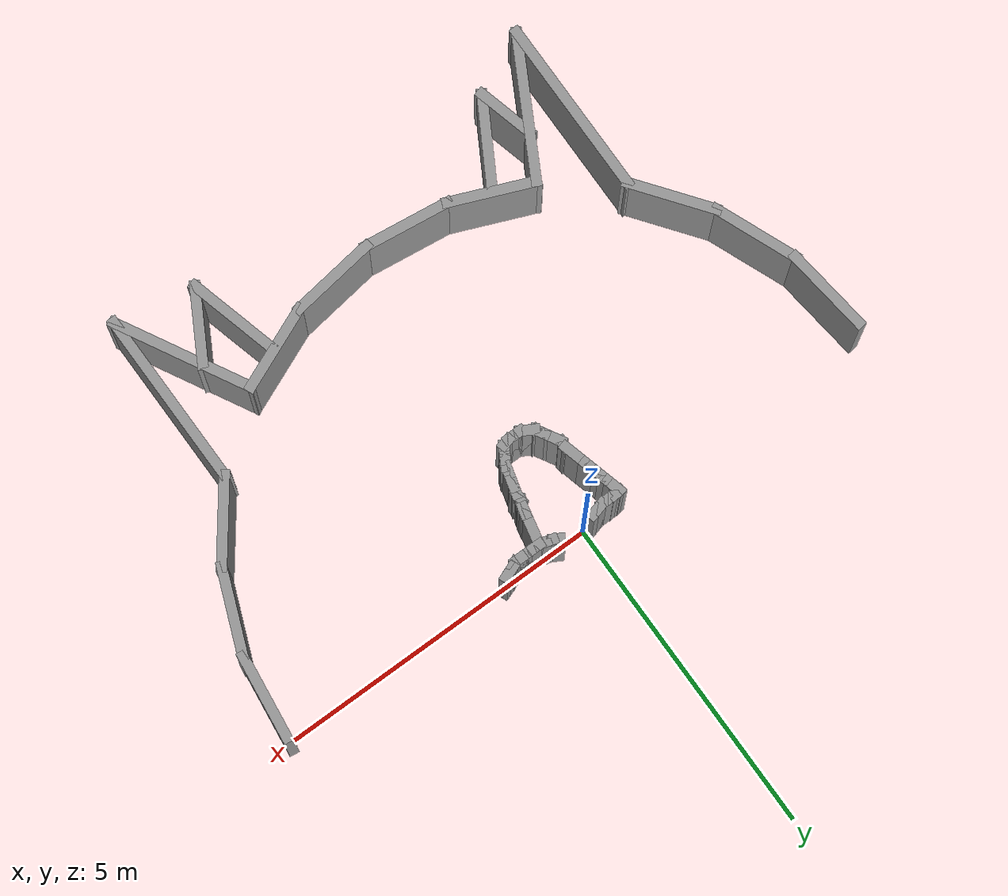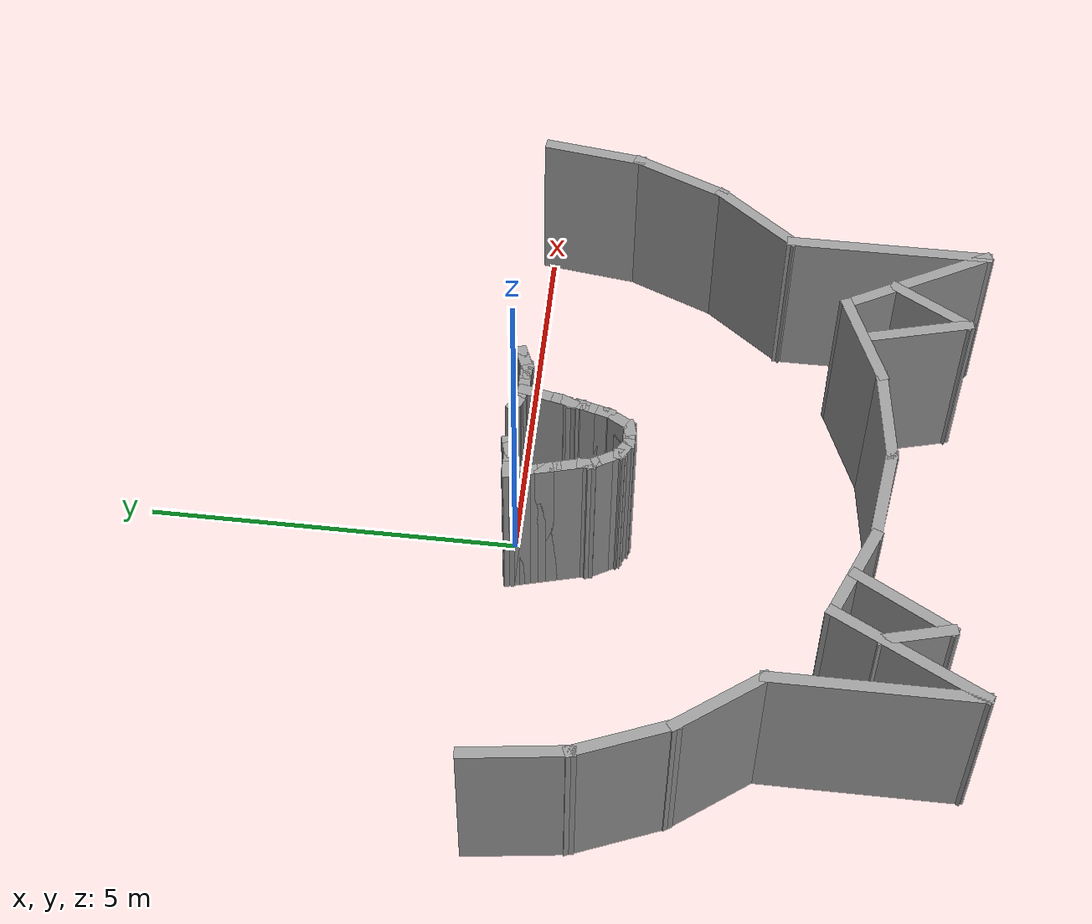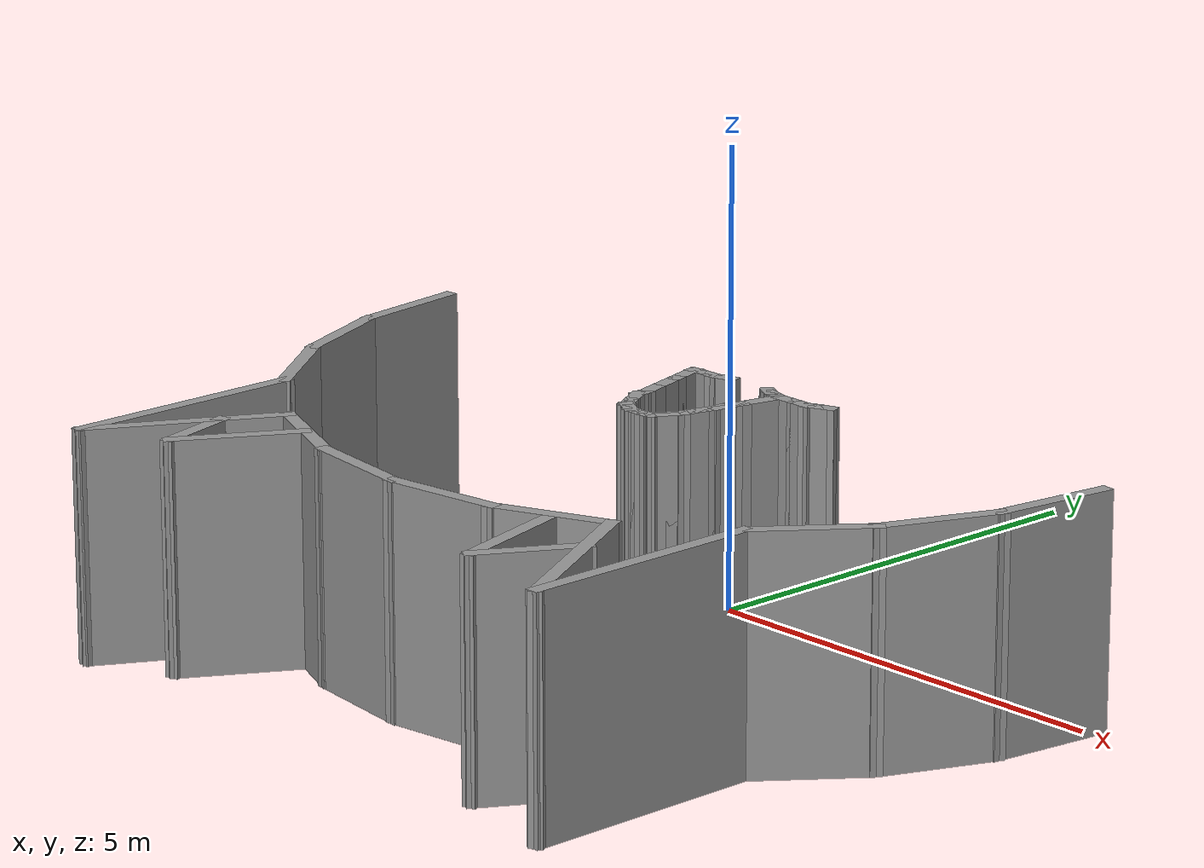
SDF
<sdf version="1.6">
 <model name="cat">
  <pose>0.253474 0.457983 0 0 -0 0</pose>
  <link name="Wall_107">
   <collision name="Wall_107_Collision">
    <geometry><box><size>2.75 0.15 2.5</size></box></geometry>
    <pose>0 0 1.25 0 -0 0</pose>
   </collision>
   <visual name="Wall_107_Visual">
    <pose>0 0 1.25 0 -0 0</pose>
    <geometry><box><size>2.75 0.15 2.5</size></box></geometry>
    <material>
     <script><uri>file://media/materials/scripts/gazebo.material</uri><name>Gazebo/Grey</name></script>
     <ambient>1 1 1 1</ambient>
    </material>
    <meta><layer>0</layer></meta>
   </visual>
   <pose>3.42947 -5.10717 0 0 -0 -1.5708</pose>
  </link>
  <link name="Wall_108">
   <collision name="Wall_108_Collision">
    <geometry><box><size>2.23689 0.15 2.5</size></box></geometry>
    <pose>0 0 1.25 0 -0 0</pose>
   </collision>
   <visual name="Wall_108_Visual">
    <pose>0 0 1.25 0 -0 0</pose>
    <geometry><box><size>2.23689 0.15 2.5</size></box></geometry>
    <material>
     <script><uri>file://media/materials/scripts/gazebo.material</uri><name>Gazebo/Grey</name></script>
     <ambient>1 1 1 1</ambient>
    </material>
    <meta><layer>0</layer></meta>
   </visual>
   <pose>2.92723 -5.49255 0 0 -0 2.07296</pose>
  </link>
  <link name="Wall_110">
   <collision name="Wall_110_Collision">
    <geometry><box><size>2.75 0.15 2.5</size></box></geometry>
    <pose>0 0 1.25 0 -0 0</pose>
   </collision>
   <visual name="Wall_110_Visual">
    <pose>0 0 1.25 0 -0 0</pose>
    <geometry><box><size>2.75 0.15 2.5</size></box></geometry>
    <material>
     <script><uri>file://media/materials/scripts/gazebo.material</uri><name>Gazebo/Grey</name></script>
     <ambient>1 1 1 1</ambient>
    </material>
    <meta><layer>0</layer></meta>
   </visual>
   <pose>-3.42947 -5.12272 0 0 -0 -1.5708</pose>
  </link>
  <link name="Wall_111">
   <collision name="Wall_111_Collision">
    <geometry><box><size>2.25053 0.15 2.5</size></box></geometry>
    <pose>0 0 1.25 0 -0 0</pose>
   </collision>
   <visual name="Wall_111_Visual">
    <pose>0 0 1.25 0 -0 0</pose>
    <geometry><box><size>2.25053 0.15 2.5</size></box></geometry>
    <material>
     <script><uri>file://media/materials/scripts/gazebo.material</uri><name>Gazebo/Grey</name></script>
     <ambient>1 1 1 1</ambient>
    </material>
    <meta><layer>0</layer></meta>
   </visual>
   <pose>-2.92723 -5.50032 0 0 -0 1.07219</pose>
  </link>
  <link name="Wall_113">
   <collision name="Wall_113_Collision">
    <geometry><box><size>1 0.15 2.5</size></box></geometry>
    <pose>0 0 1.25 0 -0 0</pose>
   </collision>
   <visual name="Wall_113_Visual">
    <pose>0 0 1.25 0 -0 0</pose>
    <geometry><box><size>1 0.15 2.5</size></box></geometry>
    <material>
     <script><uri>file://media/materials/scripts/gazebo.material</uri><name>Gazebo/Grey</name></script>
     <ambient>1 1 1 1</ambient>
    </material>
    <meta><layer>0</layer></meta>
   </visual>
   <pose>-2.64432 -5.59243 0 0 -0 -1.309</pose>
  </link>
  <link name="Wall_114">
   <collision name="Wall_114_Collision">
    <geometry><box><size>1.5 0.15 2.5</size></box></geometry>
    <pose>0 0 1.25 0 -0 0</pose>
   </collision>
   <visual name="Wall_114_Visual">
    <pose>0 0 1.25 0 -0 0</pose>
    <geometry><box><size>1.5 0.15 2.5</size></box></geometry>
    <material>
     <script><uri>file://media/materials/scripts/gazebo.material</uri><name>Gazebo/Grey</name></script>
     <ambient>1 1 1 1</ambient>
    </material>
    <meta><layer>0</layer></meta>
   </visual>
   <pose>-2.19682 -5.41839 0 0 -0 1.0472</pose>
  </link>
  <link name="Wall_118">
   <collision name="Wall_118_Collision">
    <geometry><box><size>1.25 0.15 2.5</size></box></geometry>
    <pose>0 0 1.25 0 -0 0</pose>
   </collision>
   <visual name="Wall_118_Visual">
    <pose>0 0 1.25 0 -0 0</pose>
    <geometry><box><size>1.25 0.15 2.5</size></box></geometry>
    <material>
     <script><uri>file://media/materials/scripts/gazebo.material</uri><name>Gazebo/Grey</name></script>
     <ambient>1 1 1 1</ambient>
    </material>
    <meta><layer>0</layer></meta>
   </visual>
   <pose>2.50531 -5.68932 0 0 -0 -2.0944</pose>
  </link>
  <link name="Wall_119">
   <collision name="Wall_119_Collision">
    <geometry><box><size>1.5 0.15 2.5</size></box></geometry>
    <pose>0 0 1.25 0 -0 0</pose>
   </collision>
   <visual name="Wall_119_Visual">
    <pose>0 0 1.25 0 -0 0</pose>
    <geometry><box><size>1.5 0.15 2.5</size></box></geometry>
    <material>
     <script><uri>file://media/materials/scripts/gazebo.material</uri><name>Gazebo/Grey</name></script>
     <ambient>1 1 1 1</ambient>
    </material>
    <meta><layer>0</layer></meta>
   </visual>
   <pose>2.05561 -5.51364 0 0 -0 1.8326</pose>
  </link>
  <link name="Wall_221">
   <collision name="Wall_221_Collision">
    <geometry><box><size>0.25 0.15 2.5</size></box></geometry>
    <pose>0 0 1.25 0 -0 0</pose>
   </collision>
   <visual name="Wall_221_Visual">
    <pose>0 0 1.25 0 -0 0</pose>
    <geometry><box><size>0.25 0.15 2.5</size></box></geometry>
    <material>
     <script><uri>file://media/materials/scripts/gazebo.material</uri><name>Gazebo/Grey</name></script>
     <ambient>1 1 1 1</ambient>
    </material>
    <meta><layer>0</layer></meta>
   </visual>
   <pose>-0.378775 -0.39956 0 0 -0 -2.87979</pose>
  </link>
  <link name="Wall_222">
   <collision name="Wall_222_Collision">
    <geometry><box><size>0.25 0.15 2.5</size></box></geometry>
    <pose>0 0 1.25 0 -0 0</pose>
   </collision>
   <visual name="Wall_222_Visual">
    <pose>0 0 1.25 0 -0 0</pose>
    <geometry><box><size>0.25 0.15 2.5</size></box></geometry>
    <material>
     <script><uri>file://media/materials/scripts/gazebo.material</uri><name>Gazebo/Grey</name></script>
     <ambient>1 1 1 1</ambient>
    </material>
    <meta><layer>0</layer></meta>
   </visual>
   <pose>-0.475367 -0.425442 0 0 -0 -2.87979</pose>
  </link>
  <link name="Wall_223">
   <collision name="Wall_223_Collision">
    <geometry><box><size>0.25 0.15 2.5</size></box></geometry>
    <pose>0 0 1.25 0 -0 0</pose>
   </collision>
   <visual name="Wall_223_Visual">
    <pose>0 0 1.25 0 -0 0</pose>
    <geometry><box><size>0.25 0.15 2.5</size></box></geometry>
    <material>
     <script><uri>file://media/materials/scripts/gazebo.material</uri><name>Gazebo/Grey</name></script>
     <ambient>1 1 1 1</ambient>
    </material>
    <meta><layer>0</layer></meta>
   </visual>
   <pose>-0.573664 -0.438383 0 0 -0 3.14159</pose>
  </link>
  <link name="Wall_224">
   <collision name="Wall_224_Collision">
    <geometry><box><size>0.25 0.15 2.5</size></box></geometry>
    <pose>0 0 1.25 0 -0 0</pose>
   </collision>
   <visual name="Wall_224_Visual">
    <pose>0 0 1.25 0 -0 0</pose>
    <geometry><box><size>0.25 0.15 2.5</size></box></geometry>
    <material>
     <script><uri>file://media/materials/scripts/gazebo.material</uri><name>Gazebo/Grey</name></script>
     <ambient>1 1 1 1</ambient>
    </material>
    <meta><layer>0</layer></meta>
   </visual>
   <pose>-0.673664 -0.438383 0 0 -0 3.14159</pose>
  </link>
  <link name="Wall_225">
   <collision name="Wall_225_Collision">
    <geometry><box><size>0.25 0.15 2.5</size></box></geometry>
    <pose>0 0 1.25 0 -0 0</pose>
   </collision>
   <visual name="Wall_225_Visual">
    <pose>0 0 1.25 0 -0 0</pose>
    <geometry><box><size>0.25 0.15 2.5</size></box></geometry>
    <material>
     <script><uri>file://media/materials/scripts/gazebo.material</uri><name>Gazebo/Grey</name></script>
     <ambient>1 1 1 1</ambient>
    </material>
    <meta><layer>0</layer></meta>
   </visual>
   <pose>-0.773664 -0.441993 0 0 -0 -3.0695</pose>
  </link>
  <link name="Wall_261">
   <collision name="Wall_261_Collision">
    <geometry><box><size>0.25 0.15 2.5</size></box></geometry>
    <pose>0 0 1.25 0 -0 0</pose>
   </collision>
   <visual name="Wall_261_Visual">
    <pose>0 0 1.25 0 -0 0</pose>
    <geometry><box><size>0.25 0.15 2.5</size></box></geometry>
    <material>
     <script><uri>file://media/materials/scripts/gazebo.material</uri><name>Gazebo/Grey</name></script>
     <ambient>1 1 1 1</ambient>
    </material>
    <meta><layer>0</layer></meta>
   </visual>
   <pose>0.269956 -0.414047 0 0 -0 -0.523599</pose>
  </link>
  <link name="Wall_262">
   <collision name="Wall_262_Collision">
    <geometry><box><size>0.25 0.15 2.5</size></box></geometry>
    <pose>0 0 1.25 0 -0 0</pose>
   </collision>
   <visual name="Wall_262_Visual">
    <pose>0 0 1.25 0 -0 0</pose>
    <geometry><box><size>0.25 0.15 2.5</size></box></geometry>
    <material>
     <script><uri>file://media/materials/scripts/gazebo.material</uri><name>Gazebo/Grey</name></script>
     <ambient>1 1 1 1</ambient>
    </material>
    <meta><layer>0</layer></meta>
   </visual>
   <pose>0.361554 -0.451988 0 0 -0 -0.261799</pose>
  </link>
  <link name="Wall_263">
   <collision name="Wall_263_Collision">
    <geometry><box><size>0.25 0.15 2.5</size></box></geometry>
    <pose>0 0 1.25 0 -0 0</pose>
   </collision>
   <visual name="Wall_263_Visual">
    <pose>0 0 1.25 0 -0 0</pose>
    <geometry><box><size>0.25 0.15 2.5</size></box></geometry>
    <material>
     <script><uri>file://media/materials/scripts/gazebo.material</uri><name>Gazebo/Grey</name></script>
     <ambient>1 1 1 1</ambient>
    </material>
    <meta><layer>0</layer></meta>
   </visual>
   <pose>0.458146 -0.47787 0 0 -0 -0.261799</pose>
  </link>
  <link name="Wall_264">
   <collision name="Wall_264_Collision">
    <geometry><box><size>0.25 0.15 2.5</size></box></geometry>
    <pose>0 0 1.25 0 -0 0</pose>
   </collision>
   <visual name="Wall_264_Visual">
    <pose>0 0 1.25 0 -0 0</pose>
    <geometry><box><size>0.25 0.15 2.5</size></box></geometry>
    <material>
     <script><uri>file://media/materials/scripts/gazebo.material</uri><name>Gazebo/Grey</name></script>
     <ambient>1 1 1 1</ambient>
    </material>
    <meta><layer>0</layer></meta>
   </visual>
   <pose>0.556443 -0.490811 0 0 -0 0</pose>
  </link>
  <link name="Wall_265">
   <collision name="Wall_265_Collision">
    <geometry><box><size>0.25 0.15 2.5</size></box></geometry>
    <pose>0 0 1.25 0 -0 0</pose>
   </collision>
   <visual name="Wall_265_Visual">
    <pose>0 0 1.25 0 -0 0</pose>
    <geometry><box><size>0.25 0.15 2.5</size></box></geometry>
    <material>
     <script><uri>file://media/materials/scripts/gazebo.material</uri><name>Gazebo/Grey</name></script>
     <ambient>1 1 1 1</ambient>
    </material>
    <meta><layer>0</layer></meta>
   </visual>
   <pose>0.656443 -0.490811 0 0 -0 0</pose>
  </link>
  <link name="Wall_266">
   <collision name="Wall_266_Collision">
    <geometry><box><size>0.25 0.15 2.5</size></box></geometry>
    <pose>0 0 1.25 0 -0 0</pose>
   </collision>
   <visual name="Wall_266_Visual">
    <pose>0 0 1.25 0 -0 0</pose>
    <geometry><box><size>0.25 0.15 2.5</size></box></geometry>
    <material>
     <script><uri>file://media/materials/scripts/gazebo.material</uri><name>Gazebo/Grey</name></script>
     <ambient>1 1 1 1</ambient>
    </material>
    <meta><layer>0</layer></meta>
   </visual>
   <pose>0.756443 -0.490811 0 0 -0 0</pose>
  </link>
  <link name="Wall_267">
   <collision name="Wall_267_Collision">
    <geometry><box><size>0.15 0.15 2.5</size></box></geometry>
    <pose>0 0 1.25 0 -0 0</pose>
   </collision>
   <visual name="Wall_267_Visual">
    <pose>0 0 1.25 0 -0 0</pose>
    <geometry><box><size>0.15 0.15 2.5</size></box></geometry>
    <material>
     <script><uri>file://media/materials/scripts/gazebo.material</uri><name>Gazebo/Grey</name></script>
     <ambient>1 1 1 1</ambient>
    </material>
    <meta><layer>0</layer></meta>
   </visual>
   <pose>0.806443 -0.490811 0 0 -0 0</pose>
  </link>
  <link name="Wall_268">
   <collision name="Wall_268_Collision">
    <geometry><box><size>0.25 0.15 2.5</size></box></geometry>
    <pose>0 0 1.25 0 -0 0</pose>
   </collision>
   <visual name="Wall_268_Visual">
    <pose>0 0 1.25 0 -0 0</pose>
    <geometry><box><size>0.25 0.15 2.5</size></box></geometry>
    <material>
     <script><uri>file://media/materials/scripts/gazebo.material</uri><name>Gazebo/Grey</name></script>
     <ambient>1 1 1 1</ambient>
    </material>
    <meta><layer>0</layer></meta>
   </visual>
   <pose>0.856443 -0.490811 0 0 -0 0</pose>
  </link>
  <link name="Wall_269">
   <collision name="Wall_269_Collision">
    <geometry><box><size>0.236349 0.15 2.5</size></box></geometry>
    <pose>0 0 1.25 0 -0 0</pose>
   </collision>
   <visual name="Wall_269_Visual">
    <pose>0 0 1.25 0 -0 0</pose>
    <geometry><box><size>0.236349 0.15 2.5</size></box></geometry>
    <material>
     <script><uri>file://media/materials/scripts/gazebo.material</uri><name>Gazebo/Grey</name></script>
     <ambient>1 1 1 1</ambient>
    </material>
    <meta><layer>0</layer></meta>
   </visual>
   <pose>0.944994 -0.471373 0 0 -0 0.467006</pose>
  </link>
  <link name="Wall_270">
   <collision name="Wall_270_Collision">
    <geometry><box><size>0.314899 0.15 2.5</size></box></geometry>
    <pose>0 0 1.25 0 -0 0</pose>
   </collision>
   <visual name="Wall_270_Visual">
    <pose>0 0 1.25 0 -0 0</pose>
    <geometry><box><size>0.314899 0.15 2.5</size></box></geometry>
    <material>
     <script><uri>file://media/materials/scripts/gazebo.material</uri><name>Gazebo/Grey</name></script>
     <ambient>1 1 1 1</ambient>
    </material>
    <meta><layer>0</layer></meta>
   </visual>
   <pose>1.06055 -0.42246 0 0 -0 0.365579</pose>
  </link>
  <link name="Wall_277">
   <collision name="Wall_277_Collision">
    <geometry><box><size>0.308849 0.15 2.5</size></box></geometry>
    <pose>0 0 1.25 0 -0 0</pose>
   </collision>
   <visual name="Wall_277_Visual">
    <pose>0 0 1.25 0 -0 0</pose>
    <geometry><box><size>0.308849 0.15 2.5</size></box></geometry>
    <material>
     <script><uri>file://media/materials/scripts/gazebo.material</uri><name>Gazebo/Grey</name></script>
     <ambient>1 1 1 1</ambient>
    </material>
    <meta><layer>0</layer></meta>
   </visual>
   <pose>1.06379 -0.42246 0 0 -0 0.3802</pose>
  </link>
  <link name="Wall_319">
   <collision name="Wall_319_Collision">
    <geometry><box><size>0.25 0.15 2.5</size></box></geometry>
    <pose>0 0 1.25 0 -0 0</pose>
   </collision>
   <visual name="Wall_319_Visual">
    <pose>0 0 1.25 0 -0 0</pose>
    <geometry><box><size>0.25 0.15 2.5</size></box></geometry>
    <material>
     <script><uri>file://media/materials/scripts/gazebo.material</uri><name>Gazebo/Grey</name></script>
     <ambient>1 1 1 1</ambient>
    </material>
    <meta><layer>0</layer></meta>
   </visual>
   <pose>-0.810723 -0.493901 0 0 -0 -1.309</pose>
  </link>
  <link name="Wall_320">
   <collision name="Wall_320_Collision">
    <geometry><box><size>0.25 0.15 2.5</size></box></geometry>
    <pose>0 0 1.25 0 -0 0</pose>
   </collision>
   <visual name="Wall_320_Visual">
    <pose>0 0 1.25 0 -0 0</pose>
    <geometry><box><size>0.25 0.15 2.5</size></box></geometry>
    <material>
     <script><uri>file://media/materials/scripts/gazebo.material</uri><name>Gazebo/Grey</name></script>
     <ambient>1 1 1 1</ambient>
    </material>
    <meta><layer>0</layer></meta>
   </visual>
   <pose>-0.784841 -0.590493 0 0 -0 -1.309</pose>
  </link>
  <link name="Wall_321">
   <collision name="Wall_321_Collision">
    <geometry><box><size>0.25 0.15 2.5</size></box></geometry>
    <pose>0 0 1.25 0 -0 0</pose>
   </collision>
   <visual name="Wall_321_Visual">
    <pose>0 0 1.25 0 -0 0</pose>
    <geometry><box><size>0.25 0.15 2.5</size></box></geometry>
    <material>
     <script><uri>file://media/materials/scripts/gazebo.material</uri><name>Gazebo/Grey</name></script>
     <ambient>1 1 1 1</ambient>
    </material>
    <meta><layer>0</layer></meta>
   </visual>
   <pose>-0.758959 -0.687086 0 0 -0 -1.309</pose>
  </link>
  <link name="Wall_322">
   <collision name="Wall_322_Collision">
    <geometry><box><size>0.25 0.15 2.5</size></box></geometry>
    <pose>0 0 1.25 0 -0 0</pose>
   </collision>
   <visual name="Wall_322_Visual">
    <pose>0 0 1.25 0 -0 0</pose>
    <geometry><box><size>0.25 0.15 2.5</size></box></geometry>
    <material>
     <script><uri>file://media/materials/scripts/gazebo.material</uri><name>Gazebo/Grey</name></script>
     <ambient>1 1 1 1</ambient>
    </material>
    <meta><layer>0</layer></meta>
   </visual>
   <pose>-0.733077 -0.783678 0 0 -0 -1.309</pose>
  </link>
  <link name="Wall_323">
   <collision name="Wall_323_Collision">
    <geometry><box><size>0.25 0.15 2.5</size></box></geometry>
    <pose>0 0 1.25 0 -0 0</pose>
   </collision>
   <visual name="Wall_323_Visual">
    <pose>0 0 1.25 0 -0 0</pose>
    <geometry><box><size>0.25 0.15 2.5</size></box></geometry>
    <material>
     <script><uri>file://media/materials/scripts/gazebo.material</uri><name>Gazebo/Grey</name></script>
     <ambient>1 1 1 1</ambient>
    </material>
    <meta><layer>0</layer></meta>
   </visual>
   <pose>-0.707195 -0.880271 0 0 -0 -1.309</pose>
  </link>
  <link name="Wall_324">
   <collision name="Wall_324_Collision">
    <geometry><box><size>0.25 0.15 2.5</size></box></geometry>
    <pose>0 0 1.25 0 -0 0</pose>
   </collision>
   <visual name="Wall_324_Visual">
    <pose>0 0 1.25 0 -0 0</pose>
    <geometry><box><size>0.25 0.15 2.5</size></box></geometry>
    <material>
     <script><uri>file://media/materials/scripts/gazebo.material</uri><name>Gazebo/Grey</name></script>
     <ambient>1 1 1 1</ambient>
    </material>
    <meta><layer>0</layer></meta>
   </visual>
   <pose>-0.681313 -0.976863 0 0 -0 -1.309</pose>
  </link>
  <link name="Wall_325">
   <collision name="Wall_325_Collision">
    <geometry><box><size>0.5 0.15 2.5</size></box></geometry>
    <pose>0 0 1.25 0 -0 0</pose>
   </collision>
   <visual name="Wall_325_Visual">
    <pose>0 0 1.25 0 -0 0</pose>
    <geometry><box><size>0.5 0.15 2.5</size></box></geometry>
    <material>
     <script><uri>file://media/materials/scripts/gazebo.material</uri><name>Gazebo/Grey</name></script>
     <ambient>1 1 1 1</ambient>
    </material>
    <meta><layer>0</layer></meta>
   </visual>
   <pose>-0.623079 -1.1942 0 0 -0 -1.309</pose>
  </link>
  <link name="Wall_327">
   <collision name="Wall_327_Collision">
    <geometry><box><size>0.25 0.15 2.5</size></box></geometry>
    <pose>0 0 1.25 0 -0 0</pose>
   </collision>
   <visual name="Wall_327_Visual">
    <pose>0 0 1.25 0 -0 0</pose>
    <geometry><box><size>0.25 0.15 2.5</size></box></geometry>
    <material>
     <script><uri>file://media/materials/scripts/gazebo.material</uri><name>Gazebo/Grey</name></script>
     <ambient>1 1 1 1</ambient>
    </material>
    <meta><layer>0</layer></meta>
   </visual>
   <pose>-0.577785 -1.41323 0 0 -0 -1.5708</pose>
  </link>
  <link name="Wall_328">
   <collision name="Wall_328_Collision">
    <geometry><box><size>0.25 0.15 2.5</size></box></geometry>
    <pose>0 0 1.25 0 -0 0</pose>
   </collision>
   <visual name="Wall_328_Visual">
    <pose>0 0 1.25 0 -0 0</pose>
    <geometry><box><size>0.25 0.15 2.5</size></box></geometry>
    <material>
     <script><uri>file://media/materials/scripts/gazebo.material</uri><name>Gazebo/Grey</name></script>
     <ambient>1 1 1 1</ambient>
    </material>
    <meta><layer>0</layer></meta>
   </visual>
   <pose>-0.552785 -1.50653 0 0 -0 -1.0472</pose>
  </link>
  <link name="Wall_329">
   <collision name="Wall_329_Collision">
    <geometry><box><size>0.25 0.15 2.5</size></box></geometry>
    <pose>0 0 1.25 0 -0 0</pose>
   </collision>
   <visual name="Wall_329_Visual">
    <pose>0 0 1.25 0 -0 0</pose>
    <geometry><box><size>0.25 0.15 2.5</size></box></geometry>
    <material>
     <script><uri>file://media/materials/scripts/gazebo.material</uri><name>Gazebo/Grey</name></script>
     <ambient>1 1 1 1</ambient>
    </material>
    <meta><layer>0</layer></meta>
   </visual>
   <pose>-0.502785 -1.59314 0 0 -0 -1.0472</pose>
  </link>
  <link name="Wall_330">
   <collision name="Wall_330_Collision">
    <geometry><box><size>0.25 0.15 2.5</size></box></geometry>
    <pose>0 0 1.25 0 -0 0</pose>
   </collision>
   <visual name="Wall_330_Visual">
    <pose>0 0 1.25 0 -0 0</pose>
    <geometry><box><size>0.25 0.15 2.5</size></box></geometry>
    <material>
     <script><uri>file://media/materials/scripts/gazebo.material</uri><name>Gazebo/Grey</name></script>
     <ambient>1 1 1 1</ambient>
    </material>
    <meta><layer>0</layer></meta>
   </visual>
   <pose>-0.452785 -1.67974 0 0 -0 -1.0472</pose>
  </link>
  <link name="Wall_331">
   <collision name="Wall_331_Collision">
    <geometry><box><size>0.25 0.15 2.5</size></box></geometry>
    <pose>0 0 1.25 0 -0 0</pose>
   </collision>
   <visual name="Wall_331_Visual">
    <pose>0 0 1.25 0 -0 0</pose>
    <geometry><box><size>0.25 0.15 2.5</size></box></geometry>
    <material>
     <script><uri>file://media/materials/scripts/gazebo.material</uri><name>Gazebo/Grey</name></script>
     <ambient>1 1 1 1</ambient>
    </material>
    <meta><layer>0</layer></meta>
   </visual>
   <pose>-0.402785 -1.76634 0 0 -0 -1.0472</pose>
  </link>
  <link name="Wall_332">
   <collision name="Wall_332_Collision">
    <geometry><box><size>0.15 0.15 2.5</size></box></geometry>
    <pose>0 0 1.25 0 -0 0</pose>
   </collision>
   <visual name="Wall_332_Visual">
    <pose>0 0 1.25 0 -0 0</pose>
    <geometry><box><size>0.15 0.15 2.5</size></box></geometry>
    <material>
     <script><uri>file://media/materials/scripts/gazebo.material</uri><name>Gazebo/Grey</name></script>
     <ambient>1 1 1 1</ambient>
    </material>
    <meta><layer>0</layer></meta>
   </visual>
   <pose>-0.377785 -1.80964 0 0 -0 0</pose>
  </link>
  <link name="Wall_333">
   <collision name="Wall_333_Collision">
    <geometry><box><size>0.25 0.15 2.5</size></box></geometry>
    <pose>0 0 1.25 0 -0 0</pose>
   </collision>
   <visual name="Wall_333_Visual">
    <pose>0 0 1.25 0 -0 0</pose>
    <geometry><box><size>0.25 0.15 2.5</size></box></geometry>
    <material>
     <script><uri>file://media/materials/scripts/gazebo.material</uri><name>Gazebo/Grey</name></script>
     <ambient>1 1 1 1</ambient>
    </material>
    <meta><layer>0</layer></meta>
   </visual>
   <pose>-0.334484 -1.83464 0 0 -0 -0.523599</pose>
  </link>
  <link name="Wall_334">
   <collision name="Wall_334_Collision">
    <geometry><box><size>0.25 0.15 2.5</size></box></geometry>
    <pose>0 0 1.25 0 -0 0</pose>
   </collision>
   <visual name="Wall_334_Visual">
    <pose>0 0 1.25 0 -0 0</pose>
    <geometry><box><size>0.25 0.15 2.5</size></box></geometry>
    <material>
     <script><uri>file://media/materials/scripts/gazebo.material</uri><name>Gazebo/Grey</name></script>
     <ambient>1 1 1 1</ambient>
    </material>
    <meta><layer>0</layer></meta>
   </visual>
   <pose>-0.247882 -1.88464 0 0 -0 -0.523599</pose>
  </link>
  <link name="Wall_335">
   <collision name="Wall_335_Collision">
    <geometry><box><size>0.15 0.15 2.5</size></box></geometry>
    <pose>0 0 1.25 0 -0 0</pose>
   </collision>
   <visual name="Wall_335_Visual">
    <pose>0 0 1.25 0 -0 0</pose>
    <geometry><box><size>0.15 0.15 2.5</size></box></geometry>
    <material>
     <script><uri>file://media/materials/scripts/gazebo.material</uri><name>Gazebo/Grey</name></script>
     <ambient>1 1 1 1</ambient>
    </material>
    <meta><layer>0</layer></meta>
   </visual>
   <pose>-0.20458 -1.90964 0 0 -0 0</pose>
  </link>
  <link name="Wall_336">
   <collision name="Wall_336_Collision">
    <geometry><box><size>0.25 0.15 2.5</size></box></geometry>
    <pose>0 0 1.25 0 -0 0</pose>
   </collision>
   <visual name="Wall_336_Visual">
    <pose>0 0 1.25 0 -0 0</pose>
    <geometry><box><size>0.25 0.15 2.5</size></box></geometry>
    <material>
     <script><uri>file://media/materials/scripts/gazebo.material</uri><name>Gazebo/Grey</name></script>
     <ambient>1 1 1 1</ambient>
    </material>
    <meta><layer>0</layer></meta>
   </visual>
   <pose>-0.15458 -1.90964 0 0 -0 0</pose>
  </link>
  <link name="Wall_337">
   <collision name="Wall_337_Collision">
    <geometry><box><size>0.25 0.15 2.5</size></box></geometry>
    <pose>0 0 1.25 0 -0 0</pose>
   </collision>
   <visual name="Wall_337_Visual">
    <pose>0 0 1.25 0 -0 0</pose>
    <geometry><box><size>0.25 0.15 2.5</size></box></geometry>
    <material>
     <script><uri>file://media/materials/scripts/gazebo.material</uri><name>Gazebo/Grey</name></script>
     <ambient>1 1 1 1</ambient>
    </material>
    <meta><layer>0</layer></meta>
   </visual>
   <pose>-0.05458 -1.90964 0 0 -0 0</pose>
  </link>
  <link name="Wall_338">
   <collision name="Wall_338_Collision">
    <geometry><box><size>0.25 0.15 2.5</size></box></geometry>
    <pose>0 0 1.25 0 -0 0</pose>
   </collision>
   <visual name="Wall_338_Visual">
    <pose>0 0 1.25 0 -0 0</pose>
    <geometry><box><size>0.25 0.15 2.5</size></box></geometry>
    <material>
     <script><uri>file://media/materials/scripts/gazebo.material</uri><name>Gazebo/Grey</name></script>
     <ambient>1 1 1 1</ambient>
    </material>
    <meta><layer>0</layer></meta>
   </visual>
   <pose>0.043716 -1.8967 0 0 -0 0.261799</pose>
  </link>
  <link name="Wall_339">
   <collision name="Wall_339_Collision">
    <geometry><box><size>0.25 0.15 2.5</size></box></geometry>
    <pose>0 0 1.25 0 -0 0</pose>
   </collision>
   <visual name="Wall_339_Visual">
    <pose>0 0 1.25 0 -0 0</pose>
    <geometry><box><size>0.25 0.15 2.5</size></box></geometry>
    <material>
     <script><uri>file://media/materials/scripts/gazebo.material</uri><name>Gazebo/Grey</name></script>
     <ambient>1 1 1 1</ambient>
    </material>
    <meta><layer>0</layer></meta>
   </visual>
   <pose>0.117012 -1.84046 0 0 -0 1.0472</pose>
  </link>
  <link name="Wall_340">
   <collision name="Wall_340_Collision">
    <geometry><box><size>0.25 0.15 2.5</size></box></geometry>
    <pose>0 0 1.25 0 -0 0</pose>
   </collision>
   <visual name="Wall_340_Visual">
    <pose>0 0 1.25 0 -0 0</pose>
    <geometry><box><size>0.25 0.15 2.5</size></box></geometry>
    <material>
     <script><uri>file://media/materials/scripts/gazebo.material</uri><name>Gazebo/Grey</name></script>
     <ambient>1 1 1 1</ambient>
    </material>
    <meta><layer>0</layer></meta>
   </visual>
   <pose>0.167012 -1.75386 0 0 -0 1.0472</pose>
  </link>
  <link name="Wall_341">
   <collision name="Wall_341_Collision">
    <geometry><box><size>0.25 0.15 2.5</size></box></geometry>
    <pose>0 0 1.25 0 -0 0</pose>
   </collision>
   <visual name="Wall_341_Visual">
    <pose>0 0 1.25 0 -0 0</pose>
    <geometry><box><size>0.25 0.15 2.5</size></box></geometry>
    <material>
     <script><uri>file://media/materials/scripts/gazebo.material</uri><name>Gazebo/Grey</name></script>
     <ambient>1 1 1 1</ambient>
    </material>
    <meta><layer>0</layer></meta>
   </visual>
   <pose>0.217012 -1.66726 0 0 -0 1.0472</pose>
  </link>
  <link name="Wall_342">
   <collision name="Wall_342_Collision">
    <geometry><box><size>0.25 0.15 2.5</size></box></geometry>
    <pose>0 0 1.25 0 -0 0</pose>
   </collision>
   <visual name="Wall_342_Visual">
    <pose>0 0 1.25 0 -0 0</pose>
    <geometry><box><size>0.25 0.15 2.5</size></box></geometry>
    <material>
     <script><uri>file://media/materials/scripts/gazebo.material</uri><name>Gazebo/Grey</name></script>
     <ambient>1 1 1 1</ambient>
    </material>
    <meta><layer>0</layer></meta>
   </visual>
   <pose>0.254953 -1.57566 0 0 -0 1.309</pose>
  </link>
  <link name="Wall_343">
   <collision name="Wall_343_Collision">
    <geometry><box><size>0.25 0.15 2.5</size></box></geometry>
    <pose>0 0 1.25 0 -0 0</pose>
   </collision>
   <visual name="Wall_343_Visual">
    <pose>0 0 1.25 0 -0 0</pose>
    <geometry><box><size>0.25 0.15 2.5</size></box></geometry>
    <material>
     <script><uri>file://media/materials/scripts/gazebo.material</uri><name>Gazebo/Grey</name></script>
     <ambient>1 1 1 1</ambient>
    </material>
    <meta><layer>0</layer></meta>
   </visual>
   <pose>0.280835 -1.47907 0 0 -0 1.309</pose>
  </link>
  <link name="Wall_344">
   <collision name="Wall_344_Collision">
    <geometry><box><size>0.25 0.15 2.5</size></box></geometry>
    <pose>0 0 1.25 0 -0 0</pose>
   </collision>
   <visual name="Wall_344_Visual">
    <pose>0 0 1.25 0 -0 0</pose>
    <geometry><box><size>0.25 0.15 2.5</size></box></geometry>
    <material>
     <script><uri>file://media/materials/scripts/gazebo.material</uri><name>Gazebo/Grey</name></script>
     <ambient>1 1 1 1</ambient>
    </material>
    <meta><layer>0</layer></meta>
   </visual>
   <pose>0.306717 -1.38247 0 0 -0 1.309</pose>
  </link>
  <link name="Wall_345">
   <collision name="Wall_345_Collision">
    <geometry><box><size>0.25 0.15 2.5</size></box></geometry>
    <pose>0 0 1.25 0 -0 0</pose>
   </collision>
   <visual name="Wall_345_Visual">
    <pose>0 0 1.25 0 -0 0</pose>
    <geometry><box><size>0.25 0.15 2.5</size></box></geometry>
    <material>
     <script><uri>file://media/materials/scripts/gazebo.material</uri><name>Gazebo/Grey</name></script>
     <ambient>1 1 1 1</ambient>
    </material>
    <meta><layer>0</layer></meta>
   </visual>
   <pose>0.332599 -1.28588 0 0 -0 1.309</pose>
  </link>
  <link name="Wall_346">
   <collision name="Wall_346_Collision">
    <geometry><box><size>0.25 0.15 2.5</size></box></geometry>
    <pose>0 0 1.25 0 -0 0</pose>
   </collision>
   <visual name="Wall_346_Visual">
    <pose>0 0 1.25 0 -0 0</pose>
    <geometry><box><size>0.25 0.15 2.5</size></box></geometry>
    <material>
     <script><uri>file://media/materials/scripts/gazebo.material</uri><name>Gazebo/Grey</name></script>
     <ambient>1 1 1 1</ambient>
    </material>
    <meta><layer>0</layer></meta>
   </visual>
   <pose>0.34554 -1.18758 0 0 -0 1.5708</pose>
  </link>
  <link name="Wall_347">
   <collision name="Wall_347_Collision">
    <geometry><box><size>0.256998 0.15 2.5</size></box></geometry>
    <pose>0 0 1.25 0 -0 0</pose>
   </collision>
   <visual name="Wall_347_Visual">
    <pose>0 0 1.25 0 -0 0</pose>
    <geometry><box><size>0.256998 0.15 2.5</size></box></geometry>
    <material>
     <script><uri>file://media/materials/scripts/gazebo.material</uri><name>Gazebo/Grey</name></script>
     <ambient>1 1 1 1</ambient>
    </material>
    <meta><layer>0</layer></meta>
   </visual>
   <pose>0.366495 -1.08836 0 0 -0 1.16832</pose>
  </link>
  <link name="Wall_348">
   <collision name="Wall_348_Collision">
    <geometry><box><size>0.25 0.15 2.5</size></box></geometry>
    <pose>0 0 1.25 0 -0 0</pose>
   </collision>
   <visual name="Wall_348_Visual">
    <pose>0 0 1.25 0 -0 0</pose>
    <geometry><box><size>0.25 0.15 2.5</size></box></geometry>
    <material>
     <script><uri>file://media/materials/scripts/gazebo.material</uri><name>Gazebo/Grey</name></script>
     <ambient>1 1 1 1</ambient>
    </material>
    <meta><layer>0</layer></meta>
   </visual>
   <pose>0.400392 -0.99084 0 0 -0 1.309</pose>
  </link>
  <link name="Wall_350">
   <collision name="Wall_350_Collision">
    <geometry><box><size>0.25 0.15 2.5</size></box></geometry>
    <pose>0 0 1.25 0 -0 0</pose>
   </collision>
   <visual name="Wall_350_Visual">
    <pose>0 0 1.25 0 -0 0</pose>
    <geometry><box><size>0.25 0.15 2.5</size></box></geometry>
    <material>
     <script><uri>file://media/materials/scripts/gazebo.material</uri><name>Gazebo/Grey</name></script>
     <ambient>1 1 1 1</ambient>
    </material>
    <meta><layer>0</layer></meta>
   </visual>
   <pose>0.398839 -0.99084 0 0 -0 1.309</pose>
  </link>
  <link name="Wall_352">
   <collision name="Wall_352_Collision">
    <geometry><box><size>0.71142 0.15 2.5</size></box></geometry>
    <pose>0 0 1.25 0 -0 0</pose>
   </collision>
   <visual name="Wall_352_Visual">
    <pose>0 0 1.25 0 -0 0</pose>
    <geometry><box><size>0.71142 0.15 2.5</size></box></geometry>
    <material>
     <script><uri>file://media/materials/scripts/gazebo.material</uri><name>Gazebo/Grey</name></script>
     <ambient>1 1 1 1</ambient>
    </material>
    <meta><layer>0</layer></meta>
   </visual>
   <pose>0.446171 -0.764973 0 0 -0 1.3544</pose>
  </link>
  <link name="Wall_64">
   <collision name="Wall_64_Collision">
    <geometry><box><size>1.4161 0.15 2.5</size></box></geometry>
    <pose>0 0 1.25 0 -0 0</pose>
   </collision>
   <visual name="Wall_64_Visual">
    <pose>0 0 1.25 0 -0 0</pose>
    <geometry><box><size>1.4161 0.15 2.5</size></box></geometry>
    <material>
     <script><uri>file://media/materials/scripts/gazebo.material</uri><name>Gazebo/Grey</name></script>
     <ambient>1 1 1 1</ambient>
    </material>
    <meta><layer>0</layer></meta>
   </visual>
   <pose>-4.76737 -1.00534 0 0 -0 -1.4399</pose>
  </link>
  <link name="Wall_65">
   <collision name="Wall_65_Collision">
    <geometry><box><size>1.4161 0.15 2.5</size></box></geometry>
    <pose>0 0 1.25 0 -0 0</pose>
   </collision>
   <visual name="Wall_65_Visual">
    <pose>0 0 1.25 0 -0 0</pose>
    <geometry><box><size>1.4161 0.15 2.5</size></box></geometry>
    <material>
     <script><uri>file://media/materials/scripts/gazebo.material</uri><name>Gazebo/Grey</name></script>
     <ambient>1 1 1 1</ambient>
    </material>
    <meta><layer>0</layer></meta>
   </visual>
   <pose>-4.44248 -2.21784 0 0 -0 -1.1781</pose>
  </link>
  <link name="Wall_66">
   <collision name="Wall_66_Collision">
    <geometry><box><size>1.42847 0.15 2.5</size></box></geometry>
    <pose>0 0 1.25 0 -0 0</pose>
   </collision>
   <visual name="Wall_66_Visual">
    <pose>0 0 1.25 0 -0 0</pose>
    <geometry><box><size>1.42847 0.15 2.5</size></box></geometry>
    <material>
     <script><uri>file://media/materials/scripts/gazebo.material</uri><name>Gazebo/Grey</name></script>
     <ambient>1 1 1 1</ambient>
    </material>
    <meta><layer>0</layer></meta>
   </visual>
   <pose>-3.81485 -3.31271 0 0 -0 -0.923701</pose>
  </link>
  <link name="Wall_68">
   <collision name="Wall_68_Collision">
    <geometry><box><size>1.4161 0.15 2.5</size></box></geometry>
    <pose>0 0 1.25 0 -0 0</pose>
   </collision>
   <visual name="Wall_68_Visual">
    <pose>0 0 1.25 0 -0 0</pose>
    <geometry><box><size>1.4161 0.15 2.5</size></box></geometry>
    <material>
     <script><uri>file://media/materials/scripts/gazebo.material</uri><name>Gazebo/Grey</name></script>
     <ambient>1 1 1 1</ambient>
    </material>
    <meta><layer>0</layer></meta>
   </visual>
   <pose>-1.84014 -4.82018 0 0 -0 -0.392699</pose>
  </link>
  <link name="Wall_69">
   <collision name="Wall_69_Collision">
    <geometry><box><size>1.4161 0.15 2.5</size></box></geometry>
    <pose>0 0 1.25 0 -0 0</pose>
   </collision>
   <visual name="Wall_69_Visual">
    <pose>0 0 1.25 0 -0 0</pose>
    <geometry><box><size>1.4161 0.15 2.5</size></box></geometry>
    <material>
     <script><uri>file://media/materials/scripts/gazebo.material</uri><name>Gazebo/Grey</name></script>
     <ambient>1 1 1 1</ambient>
    </material>
    <meta><layer>0</layer></meta>
   </visual>
   <pose>-0.627636 -5.14507 0 0 -0 -0.1309</pose>
  </link>
  <link name="Wall_70">
   <collision name="Wall_70_Collision">
    <geometry><box><size>1.4161 0.15 2.5</size></box></geometry>
    <pose>0 0 1.25 0 -0 0</pose>
   </collision>
   <visual name="Wall_70_Visual">
    <pose>0 0 1.25 0 -0 0</pose>
    <geometry><box><size>1.4161 0.15 2.5</size></box></geometry>
    <material>
     <script><uri>file://media/materials/scripts/gazebo.material</uri><name>Gazebo/Grey</name></script>
     <ambient>1 1 1 1</ambient>
    </material>
    <meta><layer>0</layer></meta>
   </visual>
   <pose>0.627636 -5.14507 0 0 -0 0.1309</pose>
  </link>
  <link name="Wall_71">
   <collision name="Wall_71_Collision">
    <geometry><box><size>1.4161 0.15 2.5</size></box></geometry>
    <pose>0 0 1.25 0 -0 0</pose>
   </collision>
   <visual name="Wall_71_Visual">
    <pose>0 0 1.25 0 -0 0</pose>
    <geometry><box><size>1.4161 0.15 2.5</size></box></geometry>
    <material>
     <script><uri>file://media/materials/scripts/gazebo.material</uri><name>Gazebo/Grey</name></script>
     <ambient>1 1 1 1</ambient>
    </material>
    <meta><layer>0</layer></meta>
   </visual>
   <pose>1.84014 -4.82018 0 0 -0 0.392699</pose>
  </link>
  <link name="Wall_73">
   <collision name="Wall_73_Collision">
    <geometry><box><size>1.4161 0.15 2.5</size></box></geometry>
    <pose>0 0 1.25 0 -0 0</pose>
   </collision>
   <visual name="Wall_73_Visual">
    <pose>0 0 1.25 0 -0 0</pose>
    <geometry><box><size>1.4161 0.15 2.5</size></box></geometry>
    <material>
     <script><uri>file://media/materials/scripts/gazebo.material</uri><name>Gazebo/Grey</name></script>
     <ambient>1 1 1 1</ambient>
    </material>
    <meta><layer>0</layer></meta>
   </visual>
   <pose>3.81485 -3.30493 0 0 -0 0.916298</pose>
  </link>
  <link name="Wall_74">
   <collision name="Wall_74_Collision">
    <geometry><box><size>1.4161 0.15 2.5</size></box></geometry>
    <pose>0 0 1.25 0 -0 0</pose>
   </collision>
   <visual name="Wall_74_Visual">
    <pose>0 0 1.25 0 -0 0</pose>
    <geometry><box><size>1.4161 0.15 2.5</size></box></geometry>
    <material>
     <script><uri>file://media/materials/scripts/gazebo.material</uri><name>Gazebo/Grey</name></script>
     <ambient>1 1 1 1</ambient>
    </material>
    <meta><layer>0</layer></meta>
   </visual>
   <pose>4.44248 -2.21784 0 0 -0 1.1781</pose>
  </link>
  <link name="Wall_75">
   <collision name="Wall_75_Collision">
    <geometry><box><size>1.4161 0.15 2.5</size></box></geometry>
    <pose>0 0 1.25 0 -0 0</pose>
   </collision>
   <visual name="Wall_75_Visual">
    <pose>0 0 1.25 0 -0 0</pose>
    <geometry><box><size>1.4161 0.15 2.5</size></box></geometry>
    <material>
     <script><uri>file://media/materials/scripts/gazebo.material</uri><name>Gazebo/Grey</name></script>
     <ambient>1 1 1 1</ambient>
    </material>
    <meta><layer>0</layer></meta>
   </visual>
   <pose>4.76737 -1.00534 0 0 -0 1.4399</pose>
  </link>
  <static>1</static>
 </model>
</sdf>
